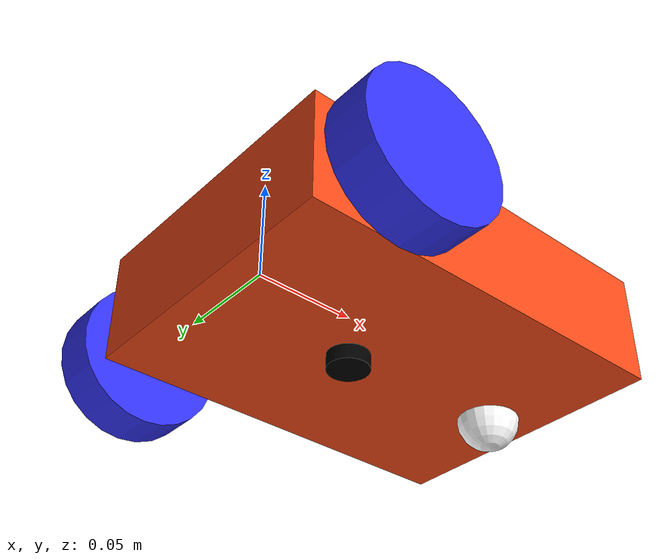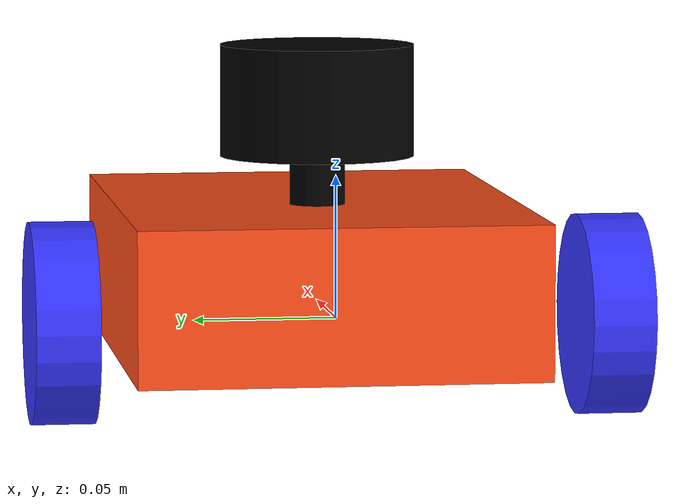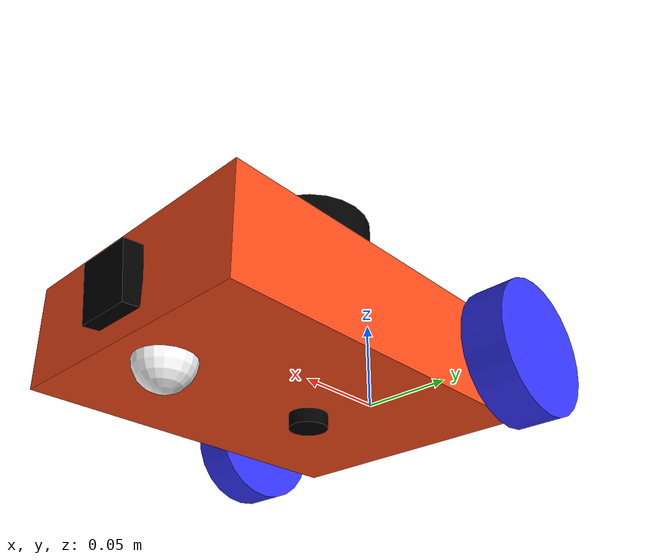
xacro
<?xml version="1.0"?>
<robot xmlns:xacro="http://www.ros.org/wiki/xacro"  name="robot">

    <xacro:arg name="use_ros2_control" default="true"/>
    <xacro:arg name="sim_mode" default="false"/>

    <xacro:include filename="robot_core.xacro" />

    <xacro:if value="$(arg use_ros2_control)">
        <xacro:include filename="ros2_control.xacro" />Add commentMore actions
    </xacro:if>
    <xacro:unless value="$(arg use_ros2_control)">
        <xacro:include filename="gazebo_control.xacro" />
    </xacro:unless>

    <xacro:include filename="lidar.xacro" />
    <xacro:include filename="camera.xacro" />

</robot>

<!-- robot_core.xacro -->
<robot xmlns:xacro="http://www.ros.org/wiki/xacro" >

    <xacro:include filename="inertial_macros.xacro"/>

    <xacro:property name="chassis_length" value="0.195"/>
    <xacro:property name="chassis_width" value="0.145"/>
    <xacro:property name="chassis_height" value="0.055"/>
    <xacro:property name="chassis_mass" value="0.7"/>
    <xacro:property name="wheel_radius" value="0.0355"/>
    <xacro:property name="wheel_thickness" value="0.0222"/>
    <xacro:property name="wheel_mass" value="0.035"/>
    <xacro:property name="wheel_offset_x" value="0.03"/>
    <xacro:property name="wheel_offset_y" value="0.0964"/>
    <xacro:property name="wheel_offset_z" value="0.02"/>
    <xacro:property name="caster_wheel_radius" value="0.015"/>
    <xacro:property name="caster_wheel_mass" value="0.01"/>
    <xacro:property name="caster_wheel_offset_x" value="0.17"/>
    <xacro:property name="caster_wheel_offset_z" value="${wheel_offset_z - wheel_radius + caster_wheel_radius}"/>

    <material name="white">
        <color rgba="1 1 1 1" />
    </material>

    <material name="orange">
        <color rgba="1 0.3 0.1 1"/>
    </material>

    <material name="blue">
        <color rgba="0.2 0.2 1 1"/>
    </material>

    <material name="black">
        <color rgba="0 0 0 1"/>
    </material>

    <material name="red">
        <color rgba="1 0 0 1"/>
    </material>

    <!-- BASE LINK -->

    <link name="base_link">

    </link>

    <!-- BASE_FOOTPRINT LINK -->

    <joint name="base_footprint_joint" type="fixed">
        <parent link="base_link"/>
        <child link="base_footprint"/>
        <origin xyz="0 0 0" rpy="0 0 0"/>
    </joint>

    <link name="base_footprint">
    </link>

    <!-- CHASSIS LINK -->

    <joint name="chassis_joint" type="fixed">
        <parent link="base_link"/>
        <child link="chassis"/>
        <origin xyz="${-wheel_offset_x} 0 ${-wheel_offset_z}"/>
    </joint>

    <link name="chassis">
        <visual>
            <origin xyz="${chassis_length/2} 0 ${chassis_height/2}"/>
            <geometry>
                <box size="${chassis_length} ${chassis_width} ${chassis_height}"/>
            </geometry>
            <material name="orange"/>
        </visual>
        <collision>
            <origin xyz="${chassis_length/2} 0 ${chassis_height/2}"/>
            <geometry>
                <box size="${chassis_length} ${chassis_width} ${chassis_height}"/>
            </geometry>
        </collision>
        <xacro:inertial_box mass="0.5" x="${chassis_length}" y="${chassis_width}" z="${chassis_height}">
            <origin xyz="${chassis_length/2} 0 ${chassis_height/2}" rpy="0 0 0"/>
        </xacro:inertial_box>
    </link>

    <gazebo reference="chassis">
        <material>Gazebo/Orange</material>
    </gazebo>

    <!-- LEFT WHEEL LINK -->

    <joint name="left_wheel_joint" type="continuous">
        <parent link="base_link"/>
        <child link="left_wheel"/>
        <origin xyz="0 ${wheel_offset_y} 0" rpy="-${pi/2} 0 0" />
        <axis xyz="0 0 1"/>
    </joint>

    <link name="left_wheel">
        <visual>
            <geometry>
                <cylinder radius="${wheel_radius}" length="${wheel_thickness}"/>
            </geometry>
            <material name="blue"/>
        </visual>
        <collision>
            <geometry>
                <sphere radius="${wheel_radius}"/>
            </geometry>
        </collision>
        <xacro:inertial_cylinder mass="${wheel_mass}" length="${wheel_thickness}" radius="${wheel_radius}">
            <origin xyz="0 0 0" rpy="0 0 0"/>
        </xacro:inertial_cylinder>
    </link>

    <gazebo reference="left_wheel">
        <material>Gazebo/Blue</material>
    </gazebo>

    <!-- RIGHT WHEEL LINK -->

    <joint name="right_wheel_joint" type="continuous">
        <parent link="base_link"/>
        <child link="right_wheel"/>
        <origin xyz="0 ${-wheel_offset_y} 0" rpy="${pi/2} 0 0" />
        <axis xyz="0 0 -1"/>
    </joint>

    <link name="right_wheel">
        <visual>
            <geometry>
                <cylinder radius="${wheel_radius}" length="${wheel_thickness}"/>
            </geometry>
            <material name="blue"/>
        </visual>
        <collision>
            <geometry>
                <sphere radius="${wheel_radius}"/>
            </geometry>
        </collision>
        <xacro:inertial_cylinder mass="${wheel_mass}" length="${wheel_thickness}" radius="${wheel_radius}">
            <origin xyz="0 0 0" rpy="0 0 0"/>
        </xacro:inertial_cylinder>
    </link>

    <gazebo reference="right_wheel">
        <material>Gazebo/Blue</material>
    </gazebo>

    <!-- CASTER WHEEL LINK -->

    <joint name="caster_wheel_joint" type="fixed">
        <parent link="chassis"/>
        <child link="caster_wheel"/>
        <origin xyz="${caster_wheel_offset_x} 0 ${caster_wheel_offset_z}"/>
    </joint>

    <link name="caster_wheel">
        <visual>
            <geometry>
                <sphere radius="${caster_wheel_radius}"/>
            </geometry>
            <material name="white"/>
        </visual>
        <collision>
            <geometry>
                <sphere radius="${caster_wheel_radius}"/>
            </geometry>
        </collision>
        <xacro:inertial_sphere mass="${caster_wheel_mass}" radius="${caster_wheel_radius}">
            <origin xyz="0 0 0" rpy="0 0 0"/>
        </xacro:inertial_sphere>
    </link>

    <gazebo reference="caster_wheel">
        <material>Gazebo/White</material>
        <mu1 value="0.001"/>
        <mu2 value="0.001"/>
    </gazebo>

</robot>

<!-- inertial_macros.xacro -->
<robot xmlns:xacro="http://www.ros.org/wiki/xacro" >

    <!-- For standard inertial calculations https://en.wikipedia.org/wiki/List_of_moments_of_inertia -->

    <xacro:macro name="inertial_sphere" params="mass radius *origin">
        <inertial>
            <xacro:insert_block name="origin"/>
            <mass value="${mass}" />
            <inertia ixx="${(2/5) * mass * (radius*radius)}" ixy="0.0" ixz="0.0"
                    iyy="${(2/5) * mass * (radius*radius)}" iyz="0.0"
                    izz="${(2/5) * mass * (radius*radius)}" />
        </inertial>
    </xacro:macro>

    <xacro:macro name="inertial_box" params="mass x y z *origin">
        <inertial>
            <xacro:insert_block name="origin"/>
            <mass value="${mass}" />
            <inertia ixx="${(1/12) * mass * (y*y+z*z)}" ixy="0.0" ixz="0.0"
                    iyy="${(1/12) * mass * (x*x+z*z)}" iyz="0.0"
                    izz="${(1/12) * mass * (x*x+y*y)}" />
        </inertial>
    </xacro:macro>

    <xacro:macro name="inertial_cylinder" params="mass length radius *origin">
        <inertial>
            <xacro:insert_block name="origin"/>
            <mass value="${mass}" />
            <inertia ixx="${(1/12) * mass * (3*radius*radius + length*length)}" ixy="0.0" ixz="0.0"
                    iyy="${(1/12) * mass * (3*radius*radius + length*length)}" iyz="0.0"
                    izz="${(1/2) * mass * (radius*radius)}" />
        </inertial>
    </xacro:macro>

</robot>

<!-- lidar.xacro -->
<robot xmlns:xacro="http://www.ros.org/wiki/xacro" >

    <joint name="laser_joint" type="fixed">
        <parent link="chassis"/>
        <child link="laser_frame"/>
        <origin xyz="0.08 0 0.0925" rpy="0 0 0"/>
    </joint>

    <link name="laser_frame">
        <visual>
            <geometry>
                <cylinder radius="0.035" length="0.04"/>
            </geometry>
            <material name="black"/>
        </visual>
        <visual>
            <origin xyz="0 0 -0.05"/>
            <geometry>
                <cylinder radius="0.01" length="0.1"/>
            </geometry>
            <material name="black"/>
        </visual>
        <collision>
            <geometry>
                <cylinder radius="0.05" length="0.04"/>
            </geometry>
        </collision>
        <xacro:inertial_cylinder mass="0.1" length="0.04" radius="0.05">
            <origin xyz="0 0 0" rpy="0 0 0"/>
        </xacro:inertial_cylinder>
    </link>

    <gazebo reference="laser_frame">
        <material>Gazebo/Black</material>

        <sensor name="laser" type="gpu_lidar">
            <pose> 0 0 0 0 0 0 </pose>
            <visualize>true</visualize>
            <update_rate>10</update_rate>
            <lidar>
                <scan>
                    <horizontal>
                        <samples>360</samples>
                        <min_angle>-3.14</min_angle>
                        <max_angle>3.14</max_angle>
                    </horizontal>
                </scan>
                <range>
                    <min>0.3</min>
                    <max>12</max>
                </range>
            </lidar>
            <topic>scan</topic>
            <gz_frame_id>laser_frame</gz_frame_id>
        </sensor>
    </gazebo>

</robot>

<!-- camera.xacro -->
<robot xmlns:xacro="http://www.ros.org/wiki/xacro" >

    <joint name="camera_joint" type="fixed">
        <parent link="chassis"/>
        <child link="camera_link"/>
        <origin xyz="0.200 0 0.025" rpy="0 0.1 0"/>
    </joint>

    <link name="camera_link">
        <visual>
            <geometry>
                <box size="0.010 0.03 0.03"/>
            </geometry>
            <material name="black"/>
        </visual>
    </link>

    <joint name="camera_optical_joint" type="fixed">
        <parent link="camera_link"/>
        <child link="camera_link_optical"/>
        <origin xyz="0 0 0" rpy="${-pi/2} 0 ${-pi/2}"/>
    </joint>

    <link name="camera_link_optical"></link>

    <gazebo reference="camera_link">
        <material>Gazebo/Black</material>

        <sensor name="camera" type="camera">
            <pose> 0 0 0 0 0 0 </pose>
            <visualize>true</visualize>
            <update_rate>10</update_rate>
            <camera>
                <horizontal_fov>1.089</horizontal_fov>
                <image>
                    <format>R8G8B8</format>
                    <width>640</width>
                    <height>480</height>
                </image>
                <clip>
                    <near>0.05</near>
                    <far>8.0</far>
                </clip>
            </camera>
            <plugin name="camera_controller" filename="libgazebo_ros_camera.so">
                <frame_name>camera_link_optical</frame_name>
            </plugin>
        </sensor>
    </gazebo>

</robot>
